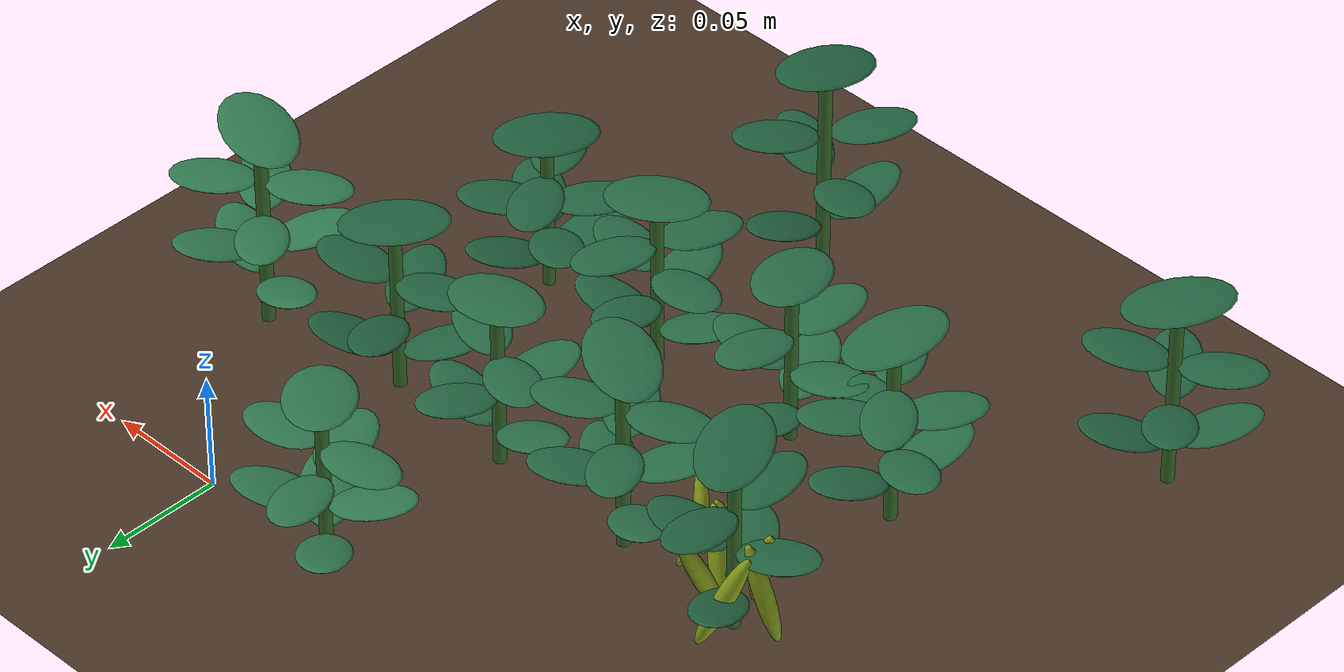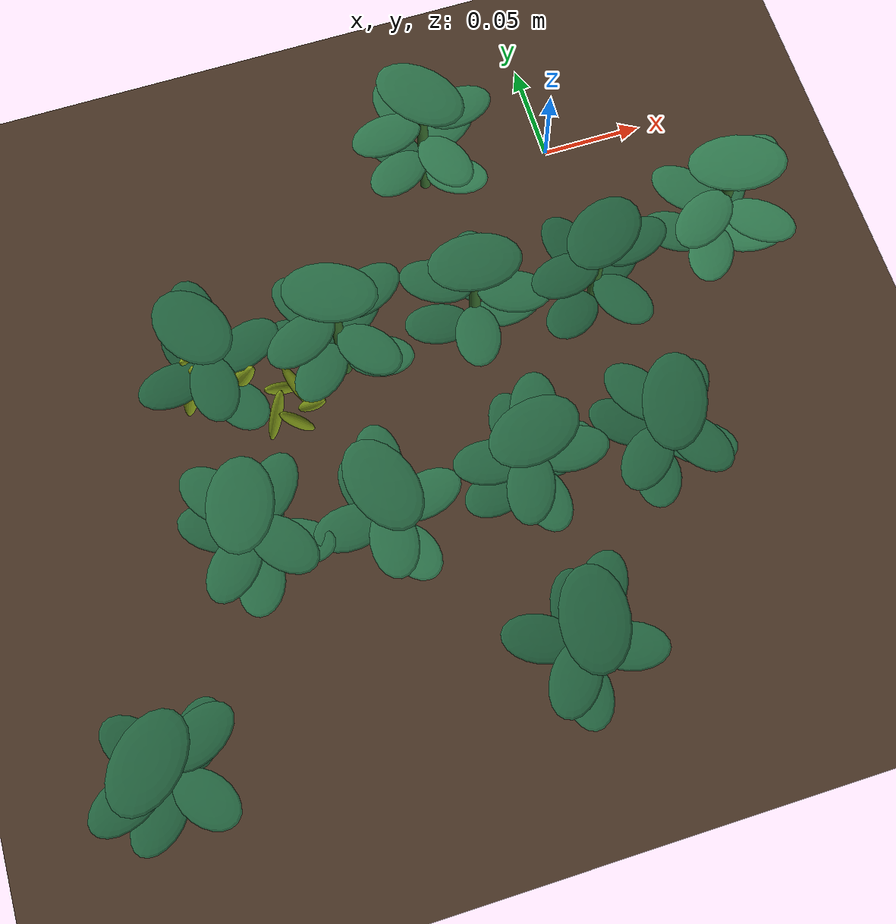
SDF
<sdf version="1.9">
 <world name="jim_field">
  <model name="ground_plane">
   <static>true</static>
   <link name="link">
    <collision name="collision">
     <geometry><plane><normal>0 0 1</normal><size>40 40</size></plane></geometry>
    </collision>
    <visual name="visual">
     <geometry><plane><normal>0 0 1</normal><size>40 40</size></plane></geometry>
     <material>
      <ambient>0.20 0.15 0.11 1</ambient>
      <diffuse>0.30 0.22 0.16 1</diffuse>
      <specular>0.01 0.01 0.01 1</specular>
     </material>
    </visual>
   </link>
  </model>
  <model name="field">
   <static>true</static>
   <pose>0.1837 -0.2516 0 0 0 0</pose>
   <model name="crop_86">
    <static>true</static>
    <pose>-0.4299 0.0013 0 0 0 0</pose>
    <link name="link">
     <visual name="stem">
      <pose>0 0 0.0399 0 0 0</pose>
      <geometry><cylinder><radius>0.0026</radius><length>0.0799</length></cylinder></geometry>
      <material>
       <ambient>0.10 0.22 0.09 1</ambient>
       <diffuse>0.20 0.40 0.16 1</diffuse>
       <specular>0.05 0.06 0.05 1</specular>
      </material>
     </visual>
     <visual name="leaflet_0_0">
      <pose>-0.0114 -0.0142 0.0240 0 -0.300 4.0365</pose>
      <geometry><ellipsoid><radii>0.0170 0.0105 0.0016</radii></ellipsoid></geometry>
      <material>
       <ambient>0.074 0.207 0.115 1</ambient>
       <diffuse>0.138 0.394 0.249 1</diffuse>
       <specular>0.05 0.06 0.05 1</specular>
      </material>
     </visual>
     <visual name="leaflet_0_1">
      <pose>0.0114 0.0142 0.0240 0 -0.300 7.1781</pose>
      <geometry><ellipsoid><radii>0.0170 0.0105 0.0016</radii></ellipsoid></geometry>
      <material>
       <ambient>0.074 0.207 0.115 1</ambient>
       <diffuse>0.138 0.394 0.249 1</diffuse>
       <specular>0.05 0.06 0.05 1</specular>
      </material>
     </visual>
     <visual name="leaflet_1_0">
      <pose>0.0114 -0.0143 0.0405 0 -0.200 5.3865</pose>
      <geometry><ellipsoid><radii>0.0170 0.0105 0.0016</radii></ellipsoid></geometry>
      <material>
       <ambient>0.074 0.207 0.115 1</ambient>
       <diffuse>0.138 0.394 0.249 1</diffuse>
       <specular>0.05 0.06 0.05 1</specular>
      </material>
     </visual>
     <visual name="leaflet_1_1">
      <pose>-0.0114 0.0143 0.0405 0 -0.200 8.5281</pose>
      <geometry><ellipsoid><radii>0.0170 0.0105 0.0016</radii></ellipsoid></geometry>
      <material>
       <ambient>0.074 0.207 0.115 1</ambient>
       <diffuse>0.138 0.394 0.249 1</diffuse>
       <specular>0.05 0.06 0.05 1</specular>
      </material>
     </visual>
     <visual name="leaflet_2_0">
      <pose>0.0164 0.0080 0.0570 0 -0.100 6.7365</pose>
      <geometry><ellipsoid><radii>0.0170 0.0105 0.0016</radii></ellipsoid></geometry>
      <material>
       <ambient>0.074 0.207 0.115 1</ambient>
       <diffuse>0.138 0.394 0.249 1</diffuse>
       <specular>0.05 0.06 0.05 1</specular>
      </material>
     </visual>
     <visual name="leaflet_2_1">
      <pose>-0.0164 -0.0080 0.0570 0 -0.100 9.8781</pose>
      <geometry><ellipsoid><radii>0.0170 0.0105 0.0016</radii></ellipsoid></geometry>
      <material>
       <ambient>0.074 0.207 0.115 1</ambient>
       <diffuse>0.138 0.394 0.249 1</diffuse>
       <specular>0.05 0.06 0.05 1</specular>
      </material>
     </visual>
     <visual name="leaflet_terminal">
      <pose>0 0 0.0839 0 -0.12 4.0365</pose>
      <geometry><ellipsoid><radii>0.0215 0.0140 0.0018</radii></ellipsoid></geometry>
      <material>
       <ambient>0.074 0.207 0.115 1</ambient>
       <diffuse>0.138 0.394 0.249 1</diffuse>
       <specular>0.05 0.06 0.05 1</specular>
      </material>
     </visual>
    </link>
   </model>
   <model name="crop_89">
    <static>true</static>
    <pose>-0.2528 0.0006 0 0 0 0</pose>
    <link name="link">
     <visual name="stem">
      <pose>0 0 0.0450 0 0 0</pose>
      <geometry><cylinder><radius>0.0027</radius><length>0.0900</length></cylinder></geometry>
      <material>
       <ambient>0.10 0.22 0.09 1</ambient>
       <diffuse>0.20 0.40 0.16 1</diffuse>
       <specular>0.05 0.06 0.05 1</specular>
      </material>
     </visual>
     <visual name="leaflet_0_0">
      <pose>0.0030 0.0186 0.0270 0 -0.300 1.4081</pose>
      <geometry><ellipsoid><radii>0.0170 0.0105 0.0016</radii></ellipsoid></geometry>
      <material>
       <ambient>0.072 0.203 0.113 1</ambient>
       <diffuse>0.134 0.387 0.245 1</diffuse>
       <specular>0.05 0.06 0.05 1</specular>
      </material>
     </visual>
     <visual name="leaflet_0_1">
      <pose>-0.0030 -0.0186 0.0270 0 -0.300 4.5497</pose>
      <geometry><ellipsoid><radii>0.0170 0.0105 0.0016</radii></ellipsoid></geometry>
      <material>
       <ambient>0.072 0.203 0.113 1</ambient>
       <diffuse>0.134 0.387 0.245 1</diffuse>
       <specular>0.05 0.06 0.05 1</specular>
      </material>
     </visual>
     <visual name="leaflet_1_0">
      <pose>-0.0174 0.0070 0.0456 0 -0.200 2.7581</pose>
      <geometry><ellipsoid><radii>0.0170 0.0105 0.0016</radii></ellipsoid></geometry>
      <material>
       <ambient>0.072 0.203 0.113 1</ambient>
       <diffuse>0.134 0.387 0.245 1</diffuse>
       <specular>0.05 0.06 0.05 1</specular>
      </material>
     </visual>
     <visual name="leaflet_1_1">
      <pose>0.0174 -0.0070 0.0456 0 -0.200 5.8997</pose>
      <geometry><ellipsoid><radii>0.0170 0.0105 0.0016</radii></ellipsoid></geometry>
      <material>
       <ambient>0.072 0.203 0.113 1</ambient>
       <diffuse>0.134 0.387 0.245 1</diffuse>
       <specular>0.05 0.06 0.05 1</specular>
      </material>
     </visual>
     <visual name="leaflet_2_0">
      <pose>-0.0107 -0.0155 0.0642 0 -0.100 4.1081</pose>
      <geometry><ellipsoid><radii>0.0170 0.0105 0.0016</radii></ellipsoid></geometry>
      <material>
       <ambient>0.072 0.203 0.113 1</ambient>
       <diffuse>0.134 0.387 0.245 1</diffuse>
       <specular>0.05 0.06 0.05 1</specular>
      </material>
     </visual>
     <visual name="leaflet_2_1">
      <pose>0.0107 0.0155 0.0642 0 -0.100 7.2497</pose>
      <geometry><ellipsoid><radii>0.0170 0.0105 0.0016</radii></ellipsoid></geometry>
      <material>
       <ambient>0.072 0.203 0.113 1</ambient>
       <diffuse>0.134 0.387 0.245 1</diffuse>
       <specular>0.05 0.06 0.05 1</specular>
      </material>
     </visual>
     <visual name="leaflet_terminal">
      <pose>0 0 0.0940 0 -0.12 1.4081</pose>
      <geometry><ellipsoid><radii>0.0215 0.0140 0.0018</radii></ellipsoid></geometry>
      <material>
       <ambient>0.072 0.203 0.113 1</ambient>
       <diffuse>0.134 0.387 0.245 1</diffuse>
       <specular>0.05 0.06 0.05 1</specular>
      </material>
     </visual>
    </link>
   </model>
   <model name="crop_104">
    <static>true</static>
    <pose>-0.3721 0.0886 0 0 0 0</pose>
    <link name="link">
     <visual name="stem">
      <pose>0 0 0.0404 0 0 0</pose>
      <geometry><cylinder><radius>0.0026</radius><length>0.0807</length></cylinder></geometry>
      <material>
       <ambient>0.10 0.22 0.09 1</ambient>
       <diffuse>0.20 0.40 0.16 1</diffuse>
       <specular>0.05 0.06 0.05 1</specular>
      </material>
     </visual>
     <visual name="leaflet_0_0">
      <pose>-0.0044 -0.0178 0.0242 0 -0.300 4.4704</pose>
      <geometry><ellipsoid><radii>0.0170 0.0105 0.0016</radii></ellipsoid></geometry>
      <material>
       <ambient>0.083 0.222 0.128 1</ambient>
       <diffuse>0.157 0.425 0.271 1</diffuse>
       <specular>0.05 0.06 0.05 1</specular>
      </material>
     </visual>
     <visual name="leaflet_0_1">
      <pose>0.0044 0.0178 0.0242 0 -0.300 7.6120</pose>
      <geometry><ellipsoid><radii>0.0170 0.0105 0.0016</radii></ellipsoid></geometry>
      <material>
       <ambient>0.083 0.222 0.128 1</ambient>
       <diffuse>0.157 0.425 0.271 1</diffuse>
       <specular>0.05 0.06 0.05 1</specular>
      </material>
     </visual>
     <visual name="leaflet_1_0">
      <pose>0.0164 -0.0082 0.0367 0 -0.200 5.8204</pose>
      <geometry><ellipsoid><radii>0.0170 0.0105 0.0016</radii></ellipsoid></geometry>
      <material>
       <ambient>0.083 0.222 0.128 1</ambient>
       <diffuse>0.157 0.425 0.271 1</diffuse>
       <specular>0.05 0.06 0.05 1</specular>
      </material>
     </visual>
     <visual name="leaflet_1_1">
      <pose>-0.0164 0.0082 0.0367 0 -0.200 8.9620</pose>
      <geometry><ellipsoid><radii>0.0170 0.0105 0.0016</radii></ellipsoid></geometry>
      <material>
       <ambient>0.083 0.222 0.128 1</ambient>
       <diffuse>0.157 0.425 0.271 1</diffuse>
       <specular>0.05 0.06 0.05 1</specular>
      </material>
     </visual>
     <visual name="leaflet_2_0">
      <pose>0.0116 0.0142 0.0492 0 -0.100 7.1704</pose>
      <geometry><ellipsoid><radii>0.0170 0.0105 0.0016</radii></ellipsoid></geometry>
      <material>
       <ambient>0.083 0.222 0.128 1</ambient>
       <diffuse>0.157 0.425 0.271 1</diffuse>
       <specular>0.05 0.06 0.05 1</specular>
      </material>
     </visual>
     <visual name="leaflet_2_1">
      <pose>-0.0116 -0.0142 0.0492 0 -0.100 10.3120</pose>
      <geometry><ellipsoid><radii>0.0170 0.0105 0.0016</radii></ellipsoid></geometry>
      <material>
       <ambient>0.083 0.222 0.128 1</ambient>
       <diffuse>0.157 0.425 0.271 1</diffuse>
       <specular>0.05 0.06 0.05 1</specular>
      </material>
     </visual>
     <visual name="leaflet_3_0">
      <pose>-0.0113 0.0144 0.0617 0 0.000 8.5204</pose>
      <geometry><ellipsoid><radii>0.0170 0.0105 0.0016</radii></ellipsoid></geometry>
      <material>
       <ambient>0.083 0.222 0.128 1</ambient>
       <diffuse>0.157 0.425 0.271 1</diffuse>
       <specular>0.05 0.06 0.05 1</specular>
      </material>
     </visual>
     <visual name="leaflet_3_1">
      <pose>0.0113 -0.0144 0.0617 0 0.000 11.6620</pose>
      <geometry><ellipsoid><radii>0.0170 0.0105 0.0016</radii></ellipsoid></geometry>
      <material>
       <ambient>0.083 0.222 0.128 1</ambient>
       <diffuse>0.157 0.425 0.271 1</diffuse>
       <specular>0.05 0.06 0.05 1</specular>
      </material>
     </visual>
     <visual name="leaflet_terminal">
      <pose>0 0 0.0847 0 -0.12 4.4704</pose>
      <geometry><ellipsoid><radii>0.0215 0.0140 0.0018</radii></ellipsoid></geometry>
      <material>
       <ambient>0.083 0.222 0.128 1</ambient>
       <diffuse>0.157 0.425 0.271 1</diffuse>
       <specular>0.05 0.06 0.05 1</specular>
      </material>
     </visual>
    </link>
   </model>
   <model name="crop_105">
    <static>true</static>
    <pose>-0.3148 0.0821 0 0 0 0</pose>
    <link name="link">
     <visual name="stem">
      <pose>0 0 0.0361 0 0 0</pose>
      <geometry><cylinder><radius>0.0026</radius><length>0.0721</length></cylinder></geometry>
      <material>
       <ambient>0.10 0.22 0.09 1</ambient>
       <diffuse>0.20 0.40 0.16 1</diffuse>
       <specular>0.05 0.06 0.05 1</specular>
      </material>
     </visual>
     <visual name="leaflet_0_0">
      <pose>-0.0062 0.0168 0.0216 0 -0.300 1.9230</pose>
      <geometry><ellipsoid><radii>0.0170 0.0105 0.0016</radii></ellipsoid></geometry>
      <material>
       <ambient>0.087 0.229 0.133 1</ambient>
       <diffuse>0.165 0.438 0.281 1</diffuse>
       <specular>0.05 0.06 0.05 1</specular>
      </material>
     </visual>
     <visual name="leaflet_0_1">
      <pose>0.0062 -0.0168 0.0216 0 -0.300 5.0646</pose>
      <geometry><ellipsoid><radii>0.0170 0.0105 0.0016</radii></ellipsoid></geometry>
      <material>
       <ambient>0.087 0.229 0.133 1</ambient>
       <diffuse>0.165 0.438 0.281 1</diffuse>
       <specular>0.05 0.06 0.05 1</specular>
      </material>
     </visual>
     <visual name="leaflet_1_0">
      <pose>-0.0177 -0.0023 0.0365 0 -0.200 3.2730</pose>
      <geometry><ellipsoid><radii>0.0170 0.0105 0.0016</radii></ellipsoid></geometry>
      <material>
       <ambient>0.087 0.229 0.133 1</ambient>
       <diffuse>0.165 0.438 0.281 1</diffuse>
       <specular>0.05 0.06 0.05 1</specular>
      </material>
     </visual>
     <visual name="leaflet_1_1">
      <pose>0.0177 0.0023 0.0365 0 -0.200 6.4146</pose>
      <geometry><ellipsoid><radii>0.0170 0.0105 0.0016</radii></ellipsoid></geometry>
      <material>
       <ambient>0.087 0.229 0.133 1</ambient>
       <diffuse>0.165 0.438 0.281 1</diffuse>
       <specular>0.05 0.06 0.05 1</specular>
      </material>
     </visual>
     <visual name="leaflet_2_0">
      <pose>-0.0016 -0.0178 0.0515 0 -0.100 4.6230</pose>
      <geometry><ellipsoid><radii>0.0170 0.0105 0.0016</radii></ellipsoid></geometry>
      <material>
       <ambient>0.087 0.229 0.133 1</ambient>
       <diffuse>0.165 0.438 0.281 1</diffuse>
       <specular>0.05 0.06 0.05 1</specular>
      </material>
     </visual>
     <visual name="leaflet_2_1">
      <pose>0.0016 0.0178 0.0515 0 -0.100 7.7646</pose>
      <geometry><ellipsoid><radii>0.0170 0.0105 0.0016</radii></ellipsoid></geometry>
      <material>
       <ambient>0.087 0.229 0.133 1</ambient>
       <diffuse>0.165 0.438 0.281 1</diffuse>
       <specular>0.05 0.06 0.05 1</specular>
      </material>
     </visual>
     <visual name="leaflet_terminal">
      <pose>0 0 0.0761 0 -0.12 1.9230</pose>
      <geometry><ellipsoid><radii>0.0215 0.0140 0.0018</radii></ellipsoid></geometry>
      <material>
       <ambient>0.087 0.229 0.133 1</ambient>
       <diffuse>0.165 0.438 0.281 1</diffuse>
       <specular>0.05 0.06 0.05 1</specular>
      </material>
     </visual>
    </link>
   </model>
   <model name="crop_106">
    <static>true</static>
    <pose>-0.2483 0.0854 0 0 0 0</pose>
    <link name="link">
     <visual name="stem">
      <pose>0 0 0.0364 0 0 0</pose>
      <geometry><cylinder><radius>0.0026</radius><length>0.0728</length></cylinder></geometry>
      <material>
       <ambient>0.10 0.22 0.09 1</ambient>
       <diffuse>0.20 0.40 0.16 1</diffuse>
       <specular>0.05 0.06 0.05 1</specular>
      </material>
     </visual>
     <visual name="leaflet_0_0">
      <pose>-0.0170 -0.0055 0.0218 0 -0.300 3.4564</pose>
      <geometry><ellipsoid><radii>0.0170 0.0105 0.0016</radii></ellipsoid></geometry>
      <material>
       <ambient>0.081 0.218 0.124 1</ambient>
       <diffuse>0.151 0.415 0.265 1</diffuse>
       <specular>0.05 0.06 0.05 1</specular>
      </material>
     </visual>
     <visual name="leaflet_0_1">
      <pose>0.0170 0.0055 0.0218 0 -0.300 6.5980</pose>
      <geometry><ellipsoid><radii>0.0170 0.0105 0.0016</radii></ellipsoid></geometry>
      <material>
       <ambient>0.081 0.218 0.124 1</ambient>
       <diffuse>0.151 0.415 0.265 1</diffuse>
       <specular>0.05 0.06 0.05 1</specular>
      </material>
     </visual>
     <visual name="leaflet_1_0">
      <pose>0.0017 -0.0178 0.0331 0 -0.200 4.8064</pose>
      <geometry><ellipsoid><radii>0.0170 0.0105 0.0016</radii></ellipsoid></geometry>
      <material>
       <ambient>0.081 0.218 0.124 1</ambient>
       <diffuse>0.151 0.415 0.265 1</diffuse>
       <specular>0.05 0.06 0.05 1</specular>
      </material>
     </visual>
     <visual name="leaflet_1_1">
      <pose>-0.0017 0.0178 0.0331 0 -0.200 7.9480</pose>
      <geometry><ellipsoid><radii>0.0170 0.0105 0.0016</radii></ellipsoid></geometry>
      <material>
       <ambient>0.081 0.218 0.124 1</ambient>
       <diffuse>0.151 0.415 0.265 1</diffuse>
       <specular>0.05 0.06 0.05 1</specular>
      </material>
     </visual>
     <visual name="leaflet_2_0">
      <pose>0.0177 -0.0023 0.0444 0 -0.100 6.1564</pose>
      <geometry><ellipsoid><radii>0.0170 0.0105 0.0016</radii></ellipsoid></geometry>
      <material>
       <ambient>0.081 0.218 0.124 1</ambient>
       <diffuse>0.151 0.415 0.265 1</diffuse>
       <specular>0.05 0.06 0.05 1</specular>
      </material>
     </visual>
     <visual name="leaflet_2_1">
      <pose>-0.0177 0.0023 0.0444 0 -0.100 9.2980</pose>
      <geometry><ellipsoid><radii>0.0170 0.0105 0.0016</radii></ellipsoid></geometry>
      <material>
       <ambient>0.081 0.218 0.124 1</ambient>
       <diffuse>0.151 0.415 0.265 1</diffuse>
       <specular>0.05 0.06 0.05 1</specular>
      </material>
     </visual>
     <visual name="leaflet_3_0">
      <pose>0.0061 0.0168 0.0557 0 0.000 7.5064</pose>
      <geometry><ellipsoid><radii>0.0170 0.0105 0.0016</radii></ellipsoid></geometry>
      <material>
       <ambient>0.081 0.218 0.124 1</ambient>
       <diffuse>0.151 0.415 0.265 1</diffuse>
       <specular>0.05 0.06 0.05 1</specular>
      </material>
     </visual>
     <visual name="leaflet_3_1">
      <pose>-0.0061 -0.0168 0.0557 0 0.000 10.6480</pose>
      <geometry><ellipsoid><radii>0.0170 0.0105 0.0016</radii></ellipsoid></geometry>
      <material>
       <ambient>0.081 0.218 0.124 1</ambient>
       <diffuse>0.151 0.415 0.265 1</diffuse>
       <specular>0.05 0.06 0.05 1</specular>
      </material>
     </visual>
     <visual name="leaflet_terminal">
      <pose>0 0 0.0768 0 -0.12 3.4564</pose>
      <geometry><ellipsoid><radii>0.0215 0.0140 0.0018</radii></ellipsoid></geometry>
      <material>
       <ambient>0.081 0.218 0.124 1</ambient>
       <diffuse>0.151 0.415 0.265 1</diffuse>
       <specular>0.05 0.06 0.05 1</specular>
      </material>
     </visual>
    </link>
   </model>
   <model name="crop_107">
    <static>true</static>
    <pose>-0.1865 0.0823 0 0 0 0</pose>
    <link name="link">
     <visual name="stem">
      <pose>0 0 0.0335 0 0 0</pose>
      <geometry><cylinder><radius>0.0025</radius><length>0.0669</length></cylinder></geometry>
      <material>
       <ambient>0.10 0.22 0.09 1</ambient>
       <diffuse>0.20 0.40 0.16 1</diffuse>
       <specular>0.05 0.06 0.05 1</specular>
      </material>
     </visual>
     <visual name="leaflet_0_0">
      <pose>0.0062 0.0164 0.0201 0 -0.300 1.2094</pose>
      <geometry><ellipsoid><radii>0.0170 0.0105 0.0016</radii></ellipsoid></geometry>
      <material>
       <ambient>0.074 0.206 0.115 1</ambient>
       <diffuse>0.137 0.392 0.248 1</diffuse>
       <specular>0.05 0.06 0.05 1</specular>
      </material>
     </visual>
     <visual name="leaflet_0_1">
      <pose>-0.0062 -0.0164 0.0201 0 -0.300 4.3510</pose>
      <geometry><ellipsoid><radii>0.0170 0.0105 0.0016</radii></ellipsoid></geometry>
      <material>
       <ambient>0.074 0.206 0.115 1</ambient>
       <diffuse>0.137 0.392 0.248 1</diffuse>
       <specular>0.05 0.06 0.05 1</specular>
      </material>
     </visual>
     <visual name="leaflet_1_0">
      <pose>-0.0147 0.0097 0.0304 0 -0.200 2.5594</pose>
      <geometry><ellipsoid><radii>0.0170 0.0105 0.0016</radii></ellipsoid></geometry>
      <material>
       <ambient>0.074 0.206 0.115 1</ambient>
       <diffuse>0.137 0.392 0.248 1</diffuse>
       <specular>0.05 0.06 0.05 1</specular>
      </material>
     </visual>
     <visual name="leaflet_1_1">
      <pose>0.0147 -0.0097 0.0304 0 -0.200 5.7010</pose>
      <geometry><ellipsoid><radii>0.0170 0.0105 0.0016</radii></ellipsoid></geometry>
      <material>
       <ambient>0.074 0.206 0.115 1</ambient>
       <diffuse>0.137 0.392 0.248 1</diffuse>
       <specular>0.05 0.06 0.05 1</specular>
      </material>
     </visual>
     <visual name="leaflet_2_0">
      <pose>-0.0126 -0.0122 0.0408 0 -0.100 3.9094</pose>
      <geometry><ellipsoid><radii>0.0170 0.0105 0.0016</radii></ellipsoid></geometry>
      <material>
       <ambient>0.074 0.206 0.115 1</ambient>
       <diffuse>0.137 0.392 0.248 1</diffuse>
       <specular>0.05 0.06 0.05 1</specular>
      </material>
     </visual>
     <visual name="leaflet_2_1">
      <pose>0.0126 0.0122 0.0408 0 -0.100 7.0510</pose>
      <geometry><ellipsoid><radii>0.0170 0.0105 0.0016</radii></ellipsoid></geometry>
      <material>
       <ambient>0.074 0.206 0.115 1</ambient>
       <diffuse>0.137 0.392 0.248 1</diffuse>
       <specular>0.05 0.06 0.05 1</specular>
      </material>
     </visual>
     <visual name="leaflet_3_0">
      <pose>0.0091 -0.0150 0.0512 0 0.000 5.2594</pose>
      <geometry><ellipsoid><radii>0.0170 0.0105 0.0016</radii></ellipsoid></geometry>
      <material>
       <ambient>0.074 0.206 0.115 1</ambient>
       <diffuse>0.137 0.392 0.248 1</diffuse>
       <specular>0.05 0.06 0.05 1</specular>
      </material>
     </visual>
     <visual name="leaflet_3_1">
      <pose>-0.0091 0.0150 0.0512 0 0.000 8.4010</pose>
      <geometry><ellipsoid><radii>0.0170 0.0105 0.0016</radii></ellipsoid></geometry>
      <material>
       <ambient>0.074 0.206 0.115 1</ambient>
       <diffuse>0.137 0.392 0.248 1</diffuse>
       <specular>0.05 0.06 0.05 1</specular>
      </material>
     </visual>
     <visual name="leaflet_terminal">
      <pose>0 0 0.0709 0 -0.12 1.2094</pose>
      <geometry><ellipsoid><radii>0.0215 0.0140 0.0018</radii></ellipsoid></geometry>
      <material>
       <ambient>0.074 0.206 0.115 1</ambient>
       <diffuse>0.137 0.392 0.248 1</diffuse>
       <specular>0.05 0.06 0.05 1</specular>
      </material>
     </visual>
    </link>
   </model>
   <model name="crop_121">
    <static>true</static>
    <pose>-0.3727 0.1706 0 0 0 0</pose>
    <link name="link">
     <visual name="stem">
      <pose>0 0 0.0397 0 0 0</pose>
      <geometry><cylinder><radius>0.0026</radius><length>0.0794</length></cylinder></geometry>
      <material>
       <ambient>0.10 0.22 0.09 1</ambient>
       <diffuse>0.20 0.40 0.16 1</diffuse>
       <specular>0.05 0.06 0.05 1</specular>
      </material>
     </visual>
     <visual name="leaflet_0_0">
      <pose>0.0084 -0.0162 0.0238 0 -0.300 5.1912</pose>
      <geometry><ellipsoid><radii>0.0170 0.0105 0.0016</radii></ellipsoid></geometry>
      <material>
       <ambient>0.072 0.204 0.113 1</ambient>
       <diffuse>0.134 0.387 0.245 1</diffuse>
       <specular>0.05 0.06 0.05 1</specular>
      </material>
     </visual>
     <visual name="leaflet_0_1">
      <pose>-0.0084 0.0162 0.0238 0 -0.300 8.3328</pose>
      <geometry><ellipsoid><radii>0.0170 0.0105 0.0016</radii></ellipsoid></geometry>
      <material>
       <ambient>0.072 0.204 0.113 1</ambient>
       <diffuse>0.134 0.387 0.245 1</diffuse>
       <specular>0.05 0.06 0.05 1</specular>
      </material>
     </visual>
     <visual name="leaflet_1_0">
      <pose>0.0176 0.0047 0.0402 0 -0.200 6.5412</pose>
      <geometry><ellipsoid><radii>0.0170 0.0105 0.0016</radii></ellipsoid></geometry>
      <material>
       <ambient>0.072 0.204 0.113 1</ambient>
       <diffuse>0.134 0.387 0.245 1</diffuse>
       <specular>0.05 0.06 0.05 1</specular>
      </material>
     </visual>
     <visual name="leaflet_1_1">
      <pose>-0.0176 -0.0047 0.0402 0 -0.200 9.6828</pose>
      <geometry><ellipsoid><radii>0.0170 0.0105 0.0016</radii></ellipsoid></geometry>
      <material>
       <ambient>0.072 0.204 0.113 1</ambient>
       <diffuse>0.134 0.387 0.245 1</diffuse>
       <specular>0.05 0.06 0.05 1</specular>
      </material>
     </visual>
     <visual name="leaflet_2_0">
      <pose>-0.0007 0.0182 0.0567 0 -0.100 7.8912</pose>
      <geometry><ellipsoid><radii>0.0170 0.0105 0.0016</radii></ellipsoid></geometry>
      <material>
       <ambient>0.072 0.204 0.113 1</ambient>
       <diffuse>0.134 0.387 0.245 1</diffuse>
       <specular>0.05 0.06 0.05 1</specular>
      </material>
     </visual>
     <visual name="leaflet_2_1">
      <pose>0.0007 -0.0182 0.0567 0 -0.100 11.0328</pose>
      <geometry><ellipsoid><radii>0.0170 0.0105 0.0016</radii></ellipsoid></geometry>
      <material>
       <ambient>0.072 0.204 0.113 1</ambient>
       <diffuse>0.134 0.387 0.245 1</diffuse>
       <specular>0.05 0.06 0.05 1</specular>
      </material>
     </visual>
     <visual name="leaflet_terminal">
      <pose>0 0 0.0834 0 -0.12 5.1912</pose>
      <geometry><ellipsoid><radii>0.0215 0.0140 0.0018</radii></ellipsoid></geometry>
      <material>
       <ambient>0.072 0.204 0.113 1</ambient>
       <diffuse>0.134 0.387 0.245 1</diffuse>
       <specular>0.05 0.06 0.05 1</specular>
      </material>
     </visual>
    </link>
   </model>
   <model name="crop_122">
    <static>true</static>
    <pose>-0.3133 0.1673 0 0 0 0</pose>
    <link name="link">
     <visual name="stem">
      <pose>0 0 0.0412 0 0 0</pose>
      <geometry><cylinder><radius>0.0027</radius><length>0.0825</length></cylinder></geometry>
      <material>
       <ambient>0.10 0.22 0.09 1</ambient>
       <diffuse>0.20 0.40 0.16 1</diffuse>
       <specular>0.05 0.06 0.05 1</specular>
      </material>
     </visual>
     <visual name="leaflet_0_0">
      <pose>0.0162 -0.0088 0.0247 0 -0.300 5.7851</pose>
      <geometry><ellipsoid><radii>0.0170 0.0105 0.0016</radii></ellipsoid></geometry>
      <material>
       <ambient>0.083 0.222 0.128 1</ambient>
       <diffuse>0.156 0.424 0.271 1</diffuse>
       <specular>0.05 0.06 0.05 1</specular>
      </material>
     </visual>
     <visual name="leaflet_0_1">
      <pose>-0.0162 0.0088 0.0247 0 -0.300 8.9267</pose>
      <geometry><ellipsoid><radii>0.0170 0.0105 0.0016</radii></ellipsoid></geometry>
      <material>
       <ambient>0.083 0.222 0.128 1</ambient>
       <diffuse>0.156 0.424 0.271 1</diffuse>
       <specular>0.05 0.06 0.05 1</specular>
      </material>
     </visual>
     <visual name="leaflet_1_0">
      <pose>0.0121 0.0138 0.0375 0 -0.200 7.1351</pose>
      <geometry><ellipsoid><radii>0.0170 0.0105 0.0016</radii></ellipsoid></geometry>
      <material>
       <ambient>0.083 0.222 0.128 1</ambient>
       <diffuse>0.156 0.424 0.271 1</diffuse>
       <specular>0.05 0.06 0.05 1</specular>
      </material>
     </visual>
     <visual name="leaflet_1_1">
      <pose>-0.0121 -0.0138 0.0375 0 -0.200 10.2767</pose>
      <geometry><ellipsoid><radii>0.0170 0.0105 0.0016</radii></ellipsoid></geometry>
      <material>
       <ambient>0.083 0.222 0.128 1</ambient>
       <diffuse>0.156 0.424 0.271 1</diffuse>
       <specular>0.05 0.06 0.05 1</specular>
      </material>
     </visual>
     <visual name="leaflet_2_0">
      <pose>-0.0109 0.0149 0.0503 0 -0.100 8.4851</pose>
      <geometry><ellipsoid><radii>0.0170 0.0105 0.0016</radii></ellipsoid></geometry>
      <material>
       <ambient>0.083 0.222 0.128 1</ambient>
       <diffuse>0.156 0.424 0.271 1</diffuse>
       <specular>0.05 0.06 0.05 1</specular>
      </material>
     </visual>
     <visual name="leaflet_2_1">
      <pose>0.0109 -0.0149 0.0503 0 -0.100 11.6267</pose>
      <geometry><ellipsoid><radii>0.0170 0.0105 0.0016</radii></ellipsoid></geometry>
      <material>
       <ambient>0.083 0.222 0.128 1</ambient>
       <diffuse>0.156 0.424 0.271 1</diffuse>
       <specular>0.05 0.06 0.05 1</specular>
      </material>
     </visual>
     <visual name="leaflet_3_0">
      <pose>-0.0169 -0.0073 0.0631 0 0.000 9.8351</pose>
      <geometry><ellipsoid><radii>0.0170 0.0105 0.0016</radii></ellipsoid></geometry>
      <material>
       <ambient>0.083 0.222 0.128 1</ambient>
       <diffuse>0.156 0.424 0.271 1</diffuse>
       <specular>0.05 0.06 0.05 1</specular>
      </material>
     </visual>
     <visual name="leaflet_3_1">
      <pose>0.0169 0.0073 0.0631 0 0.000 12.9767</pose>
      <geometry><ellipsoid><radii>0.0170 0.0105 0.0016</radii></ellipsoid></geometry>
      <material>
       <ambient>0.083 0.222 0.128 1</ambient>
       <diffuse>0.156 0.424 0.271 1</diffuse>
       <specular>0.05 0.06 0.05 1</specular>
      </material>
     </visual>
     <visual name="leaflet_terminal">
      <pose>0 0 0.0865 0 -0.12 5.7851</pose>
      <geometry><ellipsoid><radii>0.0215 0.0140 0.0018</radii></ellipsoid></geometry>
      <material>
       <ambient>0.083 0.222 0.128 1</ambient>
       <diffuse>0.156 0.424 0.271 1</diffuse>
       <specular>0.05 0.06 0.05 1</specular>
      </material>
     </visual>
    </link>
   </model>
   <model name="crop_123">
    <static>true</static>
    <pose>-0.2483 0.1673 0 0 0 0</pose>
    <link name="link">
     <visual name="stem">
      <pose>0 0 0.0360 0 0 0</pose>
      <geometry><cylinder><radius>0.0026</radius><length>0.0721</length></cylinder></geometry>
      <material>
       <ambient>0.10 0.22 0.09 1</ambient>
       <diffuse>0.20 0.40 0.16 1</diffuse>
       <specular>0.05 0.06 0.05 1</specular>
      </material>
     </visual>
     <visual name="leaflet_0_0">
      <pose>-0.0178 -0.0000 0.0216 0 -0.300 3.1430</pose>
      <geometry><ellipsoid><radii>0.0170 0.0105 0.0016</radii></ellipsoid></geometry>
      <material>
       <ambient>0.085 0.225 0.130 1</ambient>
       <diffuse>0.160 0.429 0.275 1</diffuse>
       <specular>0.05 0.06 0.05 1</specular>
      </material>
     </visual>
     <visual name="leaflet_0_1">
      <pose>0.0178 0.0000 0.0216 0 -0.300 6.2846</pose>
      <geometry><ellipsoid><radii>0.0170 0.0105 0.0016</radii></ellipsoid></geometry>
      <material>
       <ambient>0.085 0.225 0.130 1</ambient>
       <diffuse>0.160 0.429 0.275 1</diffuse>
       <specular>0.05 0.06 0.05 1</specular>
      </material>
     </visual>
     <visual name="leaflet_1_0">
      <pose>-0.0039 -0.0174 0.0365 0 -0.200 4.4930</pose>
      <geometry><ellipsoid><radii>0.0170 0.0105 0.0016</radii></ellipsoid></geometry>
      <material>
       <ambient>0.085 0.225 0.130 1</ambient>
       <diffuse>0.160 0.429 0.275 1</diffuse>
       <specular>0.05 0.06 0.05 1</specular>
      </material>
     </visual>
     <visual name="leaflet_1_1">
      <pose>0.0039 0.0174 0.0365 0 -0.200 7.6346</pose>
      <geometry><ellipsoid><radii>0.0170 0.0105 0.0016</radii></ellipsoid></geometry>
      <material>
       <ambient>0.085 0.225 0.130 1</ambient>
       <diffuse>0.160 0.429 0.275 1</diffuse>
       <specular>0.05 0.06 0.05 1</specular>
      </material>
     </visual>
     <visual name="leaflet_2_0">
      <pose>0.0161 -0.0076 0.0514 0 -0.100 5.8430</pose>
      <geometry><ellipsoid><radii>0.0170 0.0105 0.0016</radii></ellipsoid></geometry>
      <material>
       <ambient>0.085 0.225 0.130 1</ambient>
       <diffuse>0.160 0.429 0.275 1</diffuse>
       <specular>0.05 0.06 0.05 1</specular>
      </material>
     </visual>
     <visual name="leaflet_2_1">
      <pose>-0.0161 0.0076 0.0514 0 -0.100 8.9846</pose>
      <geometry><ellipsoid><radii>0.0170 0.0105 0.0016</radii></ellipsoid></geometry>
      <material>
       <ambient>0.085 0.225 0.130 1</ambient>
       <diffuse>0.160 0.429 0.275 1</diffuse>
       <specular>0.05 0.06 0.05 1</specular>
      </material>
     </visual>
     <visual name="leaflet_terminal">
      <pose>0 0 0.0761 0 -0.12 3.1430</pose>
      <geometry><ellipsoid><radii>0.0215 0.0140 0.0018</radii></ellipsoid></geometry>
      <material>
       <ambient>0.085 0.225 0.130 1</ambient>
       <diffuse>0.160 0.429 0.275 1</diffuse>
       <specular>0.05 0.06 0.05 1</specular>
      </material>
     </visual>
    </link>
   </model>
   <model name="crop_124">
    <static>true</static>
    <pose>-0.1902 0.1636 0 0 0 0</pose>
    <link name="link">
     <visual name="stem">
      <pose>0 0 0.0365 0 0 0</pose>
      <geometry><cylinder><radius>0.0026</radius><length>0.0730</length></cylinder></geometry>
      <material>
       <ambient>0.10 0.22 0.09 1</ambient>
       <diffuse>0.20 0.40 0.16 1</diffuse>
       <specular>0.05 0.06 0.05 1</specular>
      </material>
     </visual>
     <visual name="leaflet_0_0">
      <pose>-0.0142 -0.0108 0.0219 0 -0.300 3.7913</pose>
      <geometry><ellipsoid><radii>0.0170 0.0105 0.0016</radii></ellipsoid></geometry>
      <material>
       <ambient>0.071 0.201 0.111 1</ambient>
       <diffuse>0.132 0.383 0.242 1</diffuse>
       <specular>0.05 0.06 0.05 1</specular>
      </material>
     </visual>
     <visual name="leaflet_0_1">
      <pose>0.0142 0.0108 0.0219 0 -0.300 6.9329</pose>
      <geometry><ellipsoid><radii>0.0170 0.0105 0.0016</radii></ellipsoid></geometry>
      <material>
       <ambient>0.071 0.201 0.111 1</ambient>
       <diffuse>0.132 0.383 0.242 1</diffuse>
       <specular>0.05 0.06 0.05 1</specular>
      </material>
     </visual>
     <visual name="leaflet_1_0">
      <pose>0.0074 -0.0163 0.0370 0 -0.200 5.1413</pose>
      <geometry><ellipsoid><radii>0.0170 0.0105 0.0016</radii></ellipsoid></geometry>
      <material>
       <ambient>0.071 0.201 0.111 1</ambient>
       <diffuse>0.132 0.383 0.242 1</diffuse>
       <specular>0.05 0.06 0.05 1</specular>
      </material>
     </visual>
     <visual name="leaflet_1_1">
      <pose>-0.0074 0.0163 0.0370 0 -0.200 8.2829</pose>
      <geometry><ellipsoid><radii>0.0170 0.0105 0.0016</radii></ellipsoid></geometry>
      <material>
       <ambient>0.071 0.201 0.111 1</ambient>
       <diffuse>0.132 0.383 0.242 1</diffuse>
       <specular>0.05 0.06 0.05 1</specular>
      </material>
     </visual>
     <visual name="leaflet_2_0">
      <pose>0.0175 0.0037 0.0520 0 -0.100 6.4913</pose>
      <geometry><ellipsoid><radii>0.0170 0.0105 0.0016</radii></ellipsoid></geometry>
      <material>
       <ambient>0.071 0.201 0.111 1</ambient>
       <diffuse>0.132 0.383 0.242 1</diffuse>
       <specular>0.05 0.06 0.05 1</specular>
      </material>
     </visual>
     <visual name="leaflet_2_1">
      <pose>-0.0175 -0.0037 0.0520 0 -0.100 9.6329</pose>
      <geometry><ellipsoid><radii>0.0170 0.0105 0.0016</radii></ellipsoid></geometry>
      <material>
       <ambient>0.071 0.201 0.111 1</ambient>
       <diffuse>0.132 0.383 0.242 1</diffuse>
       <specular>0.05 0.06 0.05 1</specular>
      </material>
     </visual>
     <visual name="leaflet_terminal">
      <pose>0 0 0.0770 0 -0.12 3.7913</pose>
      <geometry><ellipsoid><radii>0.0215 0.0140 0.0018</radii></ellipsoid></geometry>
      <material>
       <ambient>0.071 0.201 0.111 1</ambient>
       <diffuse>0.132 0.383 0.242 1</diffuse>
       <specular>0.05 0.06 0.05 1</specular>
      </material>
     </visual>
    </link>
   </model>
   <model name="crop_125">
    <static>true</static>
    <pose>-0.1267 0.1724 0 0 0 0</pose>
    <link name="link">
     <visual name="stem">
      <pose>0 0 0.0429 0 0 0</pose>
      <geometry><cylinder><radius>0.0027</radius><length>0.0858</length></cylinder></geometry>
      <material>
       <ambient>0.10 0.22 0.09 1</ambient>
       <diffuse>0.20 0.40 0.16 1</diffuse>
       <specular>0.05 0.06 0.05 1</specular>
      </material>
     </visual>
     <visual name="leaflet_0_0">
      <pose>0.0177 -0.0057 0.0257 0 -0.300 5.9709</pose>
      <geometry><ellipsoid><radii>0.0170 0.0105 0.0016</radii></ellipsoid></geometry>
      <material>
       <ambient>0.100 0.250 0.150 1</ambient>
       <diffuse>0.190 0.480 0.310 1</diffuse>
       <specular>0.05 0.06 0.05 1</specular>
      </material>
     </visual>
     <visual name="leaflet_0_1">
      <pose>-0.0177 0.0057 0.0257 0 -0.300 9.1125</pose>
      <geometry><ellipsoid><radii>0.0170 0.0105 0.0016</radii></ellipsoid></geometry>
      <material>
       <ambient>0.100 0.250 0.150 1</ambient>
       <diffuse>0.190 0.480 0.310 1</diffuse>
       <specular>0.05 0.06 0.05 1</specular>
      </material>
     </visual>
     <visual name="leaflet_1_0">
      <pose>0.0094 0.0160 0.0390 0 -0.200 7.3209</pose>
      <geometry><ellipsoid><radii>0.0170 0.0105 0.0016</radii></ellipsoid></geometry>
      <material>
       <ambient>0.100 0.250 0.150 1</ambient>
       <diffuse>0.190 0.480 0.310 1</diffuse>
       <specular>0.05 0.06 0.05 1</specular>
      </material>
     </visual>
     <visual name="leaflet_1_1">
      <pose>-0.0094 -0.0160 0.0390 0 -0.200 10.4625</pose>
      <geometry><ellipsoid><radii>0.0170 0.0105 0.0016</radii></ellipsoid></geometry>
      <material>
       <ambient>0.100 0.250 0.150 1</ambient>
       <diffuse>0.190 0.480 0.310 1</diffuse>
       <specular>0.05 0.06 0.05 1</specular>
      </material>
     </visual>
     <visual name="leaflet_2_0">
      <pose>-0.0135 0.0127 0.0523 0 -0.100 8.6709</pose>
      <geometry><ellipsoid><radii>0.0170 0.0105 0.0016</radii></ellipsoid></geometry>
      <material>
       <ambient>0.100 0.250 0.150 1</ambient>
       <diffuse>0.190 0.480 0.310 1</diffuse>
       <specular>0.05 0.06 0.05 1</specular>
      </material>
     </visual>
     <visual name="leaflet_2_1">
      <pose>0.0135 -0.0127 0.0523 0 -0.100 11.8125</pose>
      <geometry><ellipsoid><radii>0.0170 0.0105 0.0016</radii></ellipsoid></geometry>
      <material>
       <ambient>0.100 0.250 0.150 1</ambient>
       <diffuse>0.190 0.480 0.310 1</diffuse>
       <specular>0.05 0.06 0.05 1</specular>
      </material>
     </visual>
     <visual name="leaflet_3_0">
      <pose>-0.0154 -0.0104 0.0656 0 0.000 10.0209</pose>
      <geometry><ellipsoid><radii>0.0170 0.0105 0.0016</radii></ellipsoid></geometry>
      <material>
       <ambient>0.100 0.250 0.150 1</ambient>
       <diffuse>0.190 0.480 0.310 1</diffuse>
       <specular>0.05 0.06 0.05 1</specular>
      </material>
     </visual>
     <visual name="leaflet_3_1">
      <pose>0.0154 0.0104 0.0656 0 0.000 13.1625</pose>
      <geometry><ellipsoid><radii>0.0170 0.0105 0.0016</radii></ellipsoid></geometry>
      <material>
       <ambient>0.100 0.250 0.150 1</ambient>
       <diffuse>0.190 0.480 0.310 1</diffuse>
       <specular>0.05 0.06 0.05 1</specular>
      </material>
     </visual>
     <visual name="leaflet_terminal">
      <pose>0 0 0.0898 0 -0.12 5.9709</pose>
      <geometry><ellipsoid><radii>0.0215 0.0140 0.0018</radii></ellipsoid></geometry>
      <material>
       <ambient>0.100 0.250 0.150 1</ambient>
       <diffuse>0.190 0.480 0.310 1</diffuse>
       <specular>0.05 0.06 0.05 1</specular>
      </material>
     </visual>
    </link>
   </model>
   <model name="crop_140">
    <static>true</static>
    <pose>-0.2476 0.2528 0 0 0 0</pose>
    <link name="link">
     <visual name="stem">
      <pose>0 0 0.0383 0 0 0</pose>
      <geometry><cylinder><radius>0.0026</radius><length>0.0766</length></cylinder></geometry>
      <material>
       <ambient>0.10 0.22 0.09 1</ambient>
       <diffuse>0.20 0.40 0.16 1</diffuse>
       <specular>0.05 0.06 0.05 1</specular>
      </material>
     </visual>
     <visual name="leaflet_0_0">
      <pose>-0.0129 0.0126 0.0230 0 -0.300 2.3689</pose>
      <geometry><ellipsoid><radii>0.0170 0.0105 0.0016</radii></ellipsoid></geometry>
      <material>
       <ambient>0.098 0.247 0.147 1</ambient>
       <diffuse>0.186 0.473 0.305 1</diffuse>
       <specular>0.05 0.06 0.05 1</specular>
      </material>
     </visual>
     <visual name="leaflet_0_1">
      <pose>0.0129 -0.0126 0.0230 0 -0.300 5.5105</pose>
      <geometry><ellipsoid><radii>0.0170 0.0105 0.0016</radii></ellipsoid></geometry>
      <material>
       <ambient>0.098 0.247 0.147 1</ambient>
       <diffuse>0.186 0.473 0.305 1</diffuse>
       <specular>0.05 0.06 0.05 1</specular>
      </material>
     </visual>
     <visual name="leaflet_1_0">
      <pose>-0.0152 -0.0099 0.0348 0 -0.200 3.7189</pose>
      <geometry><ellipsoid><radii>0.0170 0.0105 0.0016</radii></ellipsoid></geometry>
      <material>
       <ambient>0.098 0.247 0.147 1</ambient>
       <diffuse>0.186 0.473 0.305 1</diffuse>
       <specular>0.05 0.06 0.05 1</specular>
      </material>
     </visual>
     <visual name="leaflet_1_1">
      <pose>0.0152 0.0099 0.0348 0 -0.200 6.8605</pose>
      <geometry><ellipsoid><radii>0.0170 0.0105 0.0016</radii></ellipsoid></geometry>
      <material>
       <ambient>0.098 0.247 0.147 1</ambient>
       <diffuse>0.186 0.473 0.305 1</diffuse>
       <specular>0.05 0.06 0.05 1</specular>
      </material>
     </visual>
     <visual name="leaflet_2_0">
      <pose>0.0063 -0.0169 0.0467 0 -0.100 5.0689</pose>
      <geometry><ellipsoid><radii>0.0170 0.0105 0.0016</radii></ellipsoid></geometry>
      <material>
       <ambient>0.098 0.247 0.147 1</ambient>
       <diffuse>0.186 0.473 0.305 1</diffuse>
       <specular>0.05 0.06 0.05 1</specular>
      </material>
     </visual>
     <visual name="leaflet_2_1">
      <pose>-0.0063 0.0169 0.0467 0 -0.100 8.2105</pose>
      <geometry><ellipsoid><radii>0.0170 0.0105 0.0016</radii></ellipsoid></geometry>
      <material>
       <ambient>0.098 0.247 0.147 1</ambient>
       <diffuse>0.186 0.473 0.305 1</diffuse>
       <specular>0.05 0.06 0.05 1</specular>
      </material>
     </visual>
     <visual name="leaflet_3_0">
      <pose>0.0179 0.0024 0.0586 0 0.000 6.4189</pose>
      <geometry><ellipsoid><radii>0.0170 0.0105 0.0016</radii></ellipsoid></geometry>
      <material>
       <ambient>0.098 0.247 0.147 1</ambient>
       <diffuse>0.186 0.473 0.305 1</diffuse>
       <specular>0.05 0.06 0.05 1</specular>
      </material>
     </visual>
     <visual name="leaflet_3_1">
      <pose>-0.0179 -0.0024 0.0586 0 0.000 9.5605</pose>
      <geometry><ellipsoid><radii>0.0170 0.0105 0.0016</radii></ellipsoid></geometry>
      <material>
       <ambient>0.098 0.247 0.147 1</ambient>
       <diffuse>0.186 0.473 0.305 1</diffuse>
       <specular>0.05 0.06 0.05 1</specular>
      </material>
     </visual>
     <visual name="leaflet_terminal">
      <pose>0 0 0.0806 0 -0.12 2.3689</pose>
      <geometry><ellipsoid><radii>0.0215 0.0140 0.0018</radii></ellipsoid></geometry>
      <material>
       <ambient>0.098 0.247 0.147 1</ambient>
       <diffuse>0.186 0.473 0.305 1</diffuse>
       <specular>0.05 0.06 0.05 1</specular>
      </material>
     </visual>
    </link>
   </model>
   <model name="weed_far_8">
    <static>true</static>
    <pose>-0.3425 0.1511 0 0 0 0</pose>
    <link name="link">
     <visual name="blade_0">
      <pose>-0.0000 -0.0092 0.0167 0.3829 -0.0001 4.7120</pose>
      <geometry><ellipsoid><radii>0.0029 0.0029 0.0167</radii></ellipsoid></geometry>
      <material>
       <ambient>0.24 0.30 0.04 1</ambient>
       <diffuse>0.52 0.62 0.10 1</diffuse>
       <specular>0.05 0.06 0.05 1</specular>
      </material>
     </visual>
     <visual name="blade_1">
      <pose>0.0086 -0.0032 0.0167 0.1794 0.4874 5.9305</pose>
      <geometry><ellipsoid><radii>0.0029 0.0029 0.0167</radii></ellipsoid></geometry>
      <material>
       <ambient>0.24 0.30 0.04 1</ambient>
       <diffuse>0.52 0.62 0.10 1</diffuse>
       <specular>0.05 0.06 0.05 1</specular>
      </material>
     </visual>
     <visual name="blade_2">
      <pose>0.0041 0.0082 0.0167 -0.2835 0.1425 7.3883</pose>
      <geometry><ellipsoid><radii>0.0029 0.0029 0.0167</radii></ellipsoid></geometry>
      <material>
       <ambient>0.24 0.30 0.04 1</ambient>
       <diffuse>0.52 0.62 0.10 1</diffuse>
       <specular>0.05 0.06 0.05 1</specular>
      </material>
     </visual>
     <visual name="blade_3">
      <pose>-0.0026 0.0088 0.0167 -0.5147 -0.1543 8.1453</pose>
      <geometry><ellipsoid><radii>0.0029 0.0029 0.0167</radii></ellipsoid></geometry>
      <material>
       <ambient>0.24 0.30 0.04 1</ambient>
       <diffuse>0.52 0.62 0.10 1</diffuse>
       <specular>0.05 0.06 0.05 1</specular>
      </material>
     </visual>
     <visual name="blade_4">
      <pose>-0.0085 -0.0034 0.0167 0.1744 -0.4417 9.8008</pose>
      <geometry><ellipsoid><radii>0.0029 0.0029 0.0167</radii></ellipsoid></geometry>
      <material>
       <ambient>0.24 0.30 0.04 1</ambient>
       <diffuse>0.52 0.62 0.10 1</diffuse>
       <specular>0.05 0.06 0.05 1</specular>
      </material>
     </visual>
    </link>
   </model>
   <model name="weed_far_14">
    <static>true</static>
    <pose>-0.3735 0.1711 0 0 0 0</pose>
    <link name="link">
     <visual name="blade_0">
      <pose>-0.0118 -0.0024 0.0219 0.0557 -0.2768 3.3403</pose>
      <geometry><ellipsoid><radii>0.0038 0.0038 0.0219</radii></ellipsoid></geometry>
      <material>
       <ambient>0.24 0.30 0.04 1</ambient>
       <diffuse>0.52 0.62 0.10 1</diffuse>
       <specular>0.05 0.06 0.05 1</specular>
      </material>
     </visual>
     <visual name="blade_1">
      <pose>-0.0023 -0.0118 0.0219 0.3287 -0.0635 4.5216</pose>
      <geometry><ellipsoid><radii>0.0038 0.0038 0.0219</radii></ellipsoid></geometry>
      <material>
       <ambient>0.24 0.30 0.04 1</ambient>
       <diffuse>0.52 0.62 0.10 1</diffuse>
       <specular>0.05 0.06 0.05 1</specular>
      </material>
     </visual>
     <visual name="blade_2">
      <pose>0.0116 -0.0034 0.0219 0.1119 0.3860 6.0011</pose>
      <geometry><ellipsoid><radii>0.0038 0.0038 0.0219</radii></ellipsoid></geometry>
      <material>
       <ambient>0.24 0.30 0.04 1</ambient>
       <diffuse>0.52 0.62 0.10 1</diffuse>
       <specular>0.05 0.06 0.05 1</specular>
      </material>
     </visual>
     <visual name="blade_3">
      <pose>0.0099 0.0069 0.0219 -0.2358 0.3390 6.8909</pose>
      <geometry><ellipsoid><radii>0.0038 0.0038 0.0219</radii></ellipsoid></geometry>
      <material>
       <ambient>0.24 0.30 0.04 1</ambient>
       <diffuse>0.52 0.62 0.10 1</diffuse>
       <specular>0.05 0.06 0.05 1</specular>
      </material>
     </visual>
     <visual name="blade_4">
      <pose>-0.0049 0.0110 0.0219 -0.4065 -0.1811 8.2730</pose>
      <geometry><ellipsoid><radii>0.0038 0.0038 0.0219</radii></ellipsoid></geometry>
      <material>
       <ambient>0.24 0.30 0.04 1</ambient>
       <diffuse>0.52 0.62 0.10 1</diffuse>
       <specular>0.05 0.06 0.05 1</specular>
      </material>
     </visual>
    </link>
   </model>
  </model>
 </world>
</sdf>
